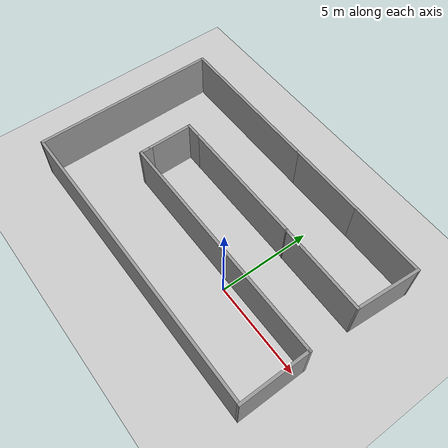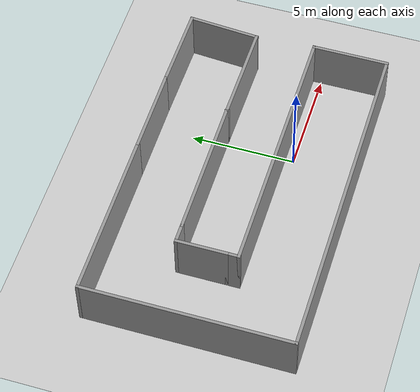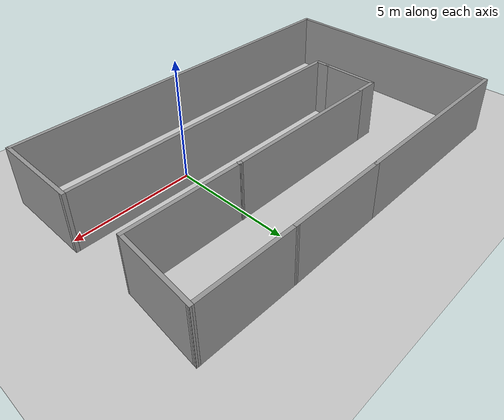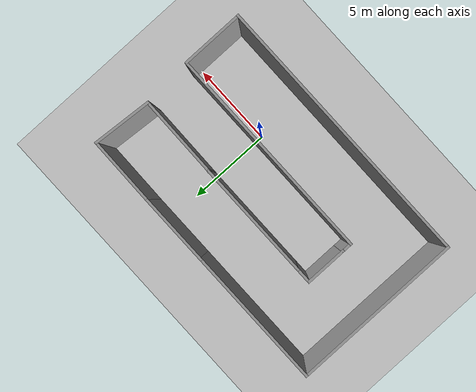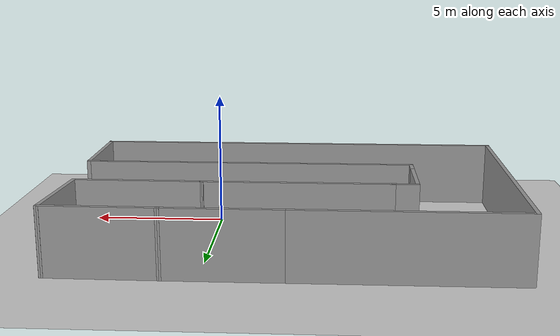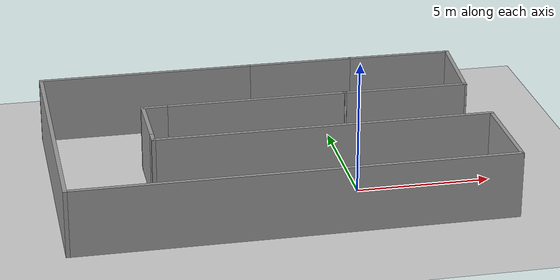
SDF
<sdf version="1.7">
 <world name="default">
  <light name="sun" type="directional">
   <pose>0 0 10 0 -0 0</pose>
   <diffuse>0.8 0.8 0.8 1</diffuse>
   <specular>0.2 0.2 0.2 1</specular>
   <attenuation>
    <range>1000</range>
    <constant>0.9</constant>
    <linear>0.01</linear>
    <quadratic>0.001</quadratic>
   </attenuation>
   <direction>-0.5 0.1 -0.9</direction>
   <spot><inner_angle>0</inner_angle><outer_angle>0</outer_angle><falloff>0</falloff></spot>
  </light>
  <model name="ground_plane">
   <static>1</static>
   <link name="link">
    <collision name="collision">
     <geometry><plane><normal>0 0 1</normal><size>100 100</size></plane></geometry>
     <surface><friction><ode><mu>100</mu><mu2>50</mu2></ode></friction></surface>
    </collision>
    <visual name="visual">
     <cast_shadows>0</cast_shadows>
     <geometry><plane><normal>0 0 1</normal><size>100 100</size></plane></geometry>
     <material>
      <script><uri>file://media/materials/scripts/gazebo.material</uri><name>Gazebo/Grey</name></script>
     </material>
    </visual>
   </link>
  </model>
  <gravity>0 0 -9.8</gravity>
  <magnetic_field>6e-06 2.3e-05 -4.2e-05</magnetic_field>
  <atmosphere type="adiabatic"/>
  <physics type="ode">
   <max_step_size>0.001</max_step_size>
   <real_time_factor>1</real_time_factor>
   <real_time_update_rate>1000</real_time_update_rate>
  </physics>
  <scene><ambient>0.4 0.4 0.4 1</ambient><background>0.7 0.7 0.7 1</background><shadows>1</shadows></scene>
  <audio><device>default</device></audio>
  <spherical_coordinates>
   <surface_model>EARTH_WGS84</surface_model>
   <latitude_deg>0</latitude_deg>
   <longitude_deg>0</longitude_deg>
   <elevation>0</elevation>
   <heading_deg>0</heading_deg>
  </spherical_coordinates>
  <model name="room1">
   <pose>-2.86314 1.80535 0 0 -0 0</pose>
   <link name="Wall_1">
    <collision name="Wall_1_Collision">
     <geometry><box><size>4.25 0.15 2.5</size></box></geometry>
     <pose>0 0 1.25 0 -0 0</pose>
    </collision>
    <visual name="Wall_1_Visual">
     <pose>0 0 1.25 0 -0 0</pose>
     <geometry><box><size>4.25 0.15 2.5</size></box></geometry>
     <material>
      <script><uri>file://media/materials/scripts/gazebo.material</uri><name>Gazebo/Grey</name></script>
      <ambient>1 1 1 1</ambient>
     </material>
     <meta><layer>0</layer></meta>
    </visual>
    <pose>2.06479 4.92457 0 0 -0 0</pose>
   </link>
   <link name="Wall_10">
    <collision name="Wall_10_Collision">
     <geometry><box><size>7 0.15 2.5</size></box></geometry>
     <pose>0 0 1.25 0 -0 0</pose>
    </collision>
    <visual name="Wall_10_Visual">
     <pose>0 0 1.25 0 -0 0</pose>
     <geometry><box><size>7 0.15 2.5</size></box></geometry>
     <material>
      <script><uri>file://media/materials/scripts/gazebo.material</uri><name>Gazebo/Grey</name></script>
      <ambient>1 1 1 1</ambient>
     </material>
     <meta><layer>0</layer></meta>
    </visual>
    <pose>-0.310209 1.57457 0 0 -0 3.14159</pose>
   </link>
   <link name="Wall_11">
    <collision name="Wall_11_Collision">
     <geometry><box><size>1 0.15 2.5</size></box></geometry>
     <pose>0 0 1.25 0 -0 0</pose>
    </collision>
    <visual name="Wall_11_Visual">
     <pose>0 0 1.25 0 -0 0</pose>
     <geometry><box><size>1 0.15 2.5</size></box></geometry>
     <material>
      <script><uri>file://media/materials/scripts/gazebo.material</uri><name>Gazebo/Grey</name></script>
      <ambient>1 1 1 1</ambient>
     </material>
     <meta><layer>0</layer></meta>
    </visual>
    <pose>-4.16021 1.57457 0 0 -0 3.14159</pose>
   </link>
   <link name="Wall_12">
    <collision name="Wall_12_Collision">
     <geometry><box><size>2.5 0.15 2.5</size></box></geometry>
     <pose>0 0 1.25 0 -0 0</pose>
    </collision>
    <visual name="Wall_12_Visual">
     <pose>0 0 1.25 0 -0 0</pose>
     <geometry><box><size>2.5 0.15 2.5</size></box></geometry>
     <material>
      <script><uri>file://media/materials/scripts/gazebo.material</uri><name>Gazebo/Grey</name></script>
      <ambient>1 1 1 1</ambient>
     </material>
     <meta><layer>0</layer></meta>
    </visual>
    <pose>-4.58521 0.399566 0 0 -0 -1.5708</pose>
   </link>
   <link name="Wall_14">
    <collision name="Wall_14_Collision">
     <geometry><box><size>8.25 0.15 2.5</size></box></geometry>
     <pose>0 0 1.25 0 -0 0</pose>
    </collision>
    <visual name="Wall_14_Visual">
     <pose>0 0 1.25 0 -0 0</pose>
     <geometry><box><size>8.25 0.15 2.5</size></box></geometry>
     <material>
      <script><uri>file://media/materials/scripts/gazebo.material</uri><name>Gazebo/Grey</name></script>
      <ambient>1 1 1 1</ambient>
     </material>
     <meta><layer>0</layer></meta>
    </visual>
    <pose>-4.03521 4.92457 0 0 -0 3.14159</pose>
   </link>
   <link name="Wall_16">
    <collision name="Wall_16_Collision">
     <geometry><box><size>10 0.15 2.5</size></box></geometry>
     <pose>0 0 1.25 0 -0 0</pose>
    </collision>
    <visual name="Wall_16_Visual">
     <pose>0 0 1.25 0 -0 0</pose>
     <geometry><box><size>10 0.15 2.5</size></box></geometry>
     <material>
      <script><uri>file://media/materials/scripts/gazebo.material</uri><name>Gazebo/Grey</name></script>
      <ambient>1 1 1 1</ambient>
     </material>
     <meta><layer>0</layer></meta>
    </visual>
    <pose>-8.08521 -0.000433 0 0 -0 -1.5708</pose>
   </link>
   <link name="Wall_18">
    <collision name="Wall_18_Collision">
     <geometry><box><size>16.25 0.15 2.5</size></box></geometry>
     <pose>0 0 1.25 0 -0 0</pose>
    </collision>
    <visual name="Wall_18_Visual">
     <pose>0 0 1.25 0 -0 0</pose>
     <geometry><box><size>16.25 0.15 2.5</size></box></geometry>
     <material>
      <script><uri>file://media/materials/scripts/gazebo.material</uri><name>Gazebo/Grey</name></script>
      <ambient>1 1 1 1</ambient>
     </material>
     <meta><layer>0</layer></meta>
    </visual>
    <pose>-0.035209 -4.92543 0 0 -0 0</pose>
   </link>
   <link name="Wall_19">
    <collision name="Wall_19_Collision">
     <geometry><box><size>3.75 0.15 2.5</size></box></geometry>
     <pose>0 0 1.25 0 -0 0</pose>
    </collision>
    <visual name="Wall_19_Visual">
     <pose>0 0 1.25 0 -0 0</pose>
     <geometry><box><size>3.75 0.15 2.5</size></box></geometry>
     <material>
      <script><uri>file://media/materials/scripts/gazebo.material</uri><name>Gazebo/Grey</name></script>
      <ambient>1 1 1 1</ambient>
     </material>
     <meta><layer>0</layer></meta>
    </visual>
    <pose>8.01479 -3.12543 0 0 -0 1.5708</pose>
   </link>
   <link name="Wall_20">
    <collision name="Wall_20_Collision">
     <geometry><box><size>12.75 0.15 2.5</size></box></geometry>
     <pose>0 0 1.25 0 -0 0</pose>
    </collision>
    <visual name="Wall_20_Visual">
     <pose>0 0 1.25 0 -0 0</pose>
     <geometry><box><size>12.75 0.15 2.5</size></box></geometry>
     <material>
      <script><uri>file://media/materials/scripts/gazebo.material</uri><name>Gazebo/Grey</name></script>
      <ambient>1 1 1 1</ambient>
     </material>
     <meta><layer>0</layer></meta>
    </visual>
    <pose>1.71479 -1.32543 0 0 -0 3.14159</pose>
   </link>
   <link name="Wall_21">
    <collision name="Wall_21_Collision">
     <geometry><box><size>0.7 0.15 2.5</size></box></geometry>
     <pose>0 0 1.25 0 -0 0</pose>
    </collision>
    <visual name="Wall_21_Visual">
     <pose>0 0 1.25 0 -0 0</pose>
     <geometry><box><size>0.7 0.15 2.5</size></box></geometry>
     <material>
      <script><uri>file://media/materials/scripts/gazebo.material</uri><name>Gazebo/Grey</name></script>
      <ambient>1 1 1 1</ambient>
     </material>
     <meta><layer>0</layer></meta>
    </visual>
    <pose>-4.58521 -1.05043 0 0 -0 1.5708</pose>
   </link>
   <link name="Wall_24">
    <collision name="Wall_24_Collision">
     <geometry><box><size>3.51951 0.15 2.5</size></box></geometry>
     <pose>0 0 1.25 0 -0 0</pose>
    </collision>
    <visual name="Wall_24_Visual">
     <pose>0 0 1.25 0 -0 0</pose>
     <geometry><box><size>3.51951 0.15 2.5</size></box></geometry>
     <material>
      <script><uri>file://media/materials/scripts/gazebo.material</uri><name>Gazebo/Grey</name></script>
      <ambient>1 1 1 1</ambient>
     </material>
     <meta><layer>0</layer></meta>
    </visual>
    <pose>7.95329 3.19857 0 0 -0 1.49564</pose>
   </link>
   <link name="Wall_3">
    <collision name="Wall_3_Collision">
     <geometry><box><size>4.1156 0.15 2.5</size></box></geometry>
     <pose>0 0 1.25 0 -0 0</pose>
    </collision>
    <visual name="Wall_3_Visual">
     <pose>0 0 1.25 0 -0 0</pose>
     <geometry><box><size>4.1156 0.15 2.5</size></box></geometry>
     <material>
      <script><uri>file://media/materials/scripts/gazebo.material</uri><name>Gazebo/Grey</name></script>
      <ambient>1 1 1 1</ambient>
     </material>
     <meta><layer>0</layer></meta>
    </visual>
    <pose>6.09729 4.90157 0 0 -0 -0.011601</pose>
   </link>
   <link name="Wall_7">
    <collision name="Wall_7_Collision">
     <geometry><box><size>4.79323 0.15 2.5</size></box></geometry>
     <pose>0 0 1.25 0 -0 0</pose>
    </collision>
    <visual name="Wall_7_Visual">
     <pose>0 0 1.25 0 -0 0</pose>
     <geometry><box><size>4.79323 0.15 2.5</size></box></geometry>
     <material>
      <script><uri>file://media/materials/scripts/gazebo.material</uri><name>Gazebo/Grey</name></script>
      <ambient>1 1 1 1</ambient>
     </material>
     <meta><layer>0</layer></meta>
    </visual>
    <pose>5.50529 1.54157 0 0 -0 3.13169</pose>
   </link>
   <link name="Wall_8">
    <collision name="Wall_8_Collision">
     <geometry><box><size>0.17508 0.15 2.5</size></box></geometry>
     <pose>0 0 1.25 0 -0 0</pose>
    </collision>
    <visual name="Wall_8_Visual">
     <pose>0 0 1.25 0 -0 0</pose>
     <geometry><box><size>0.17508 0.15 2.5</size></box></geometry>
     <material>
      <script><uri>file://media/materials/scripts/gazebo.material</uri><name>Gazebo/Grey</name></script>
      <ambient>1 1 1 1</ambient>
     </material>
     <meta><layer>0</layer></meta>
    </visual>
    <pose>3.12629 1.56957 0 0 -0 2.73147</pose>
   </link>
   <static>1</static>
  </model>
 </world>
</sdf>
